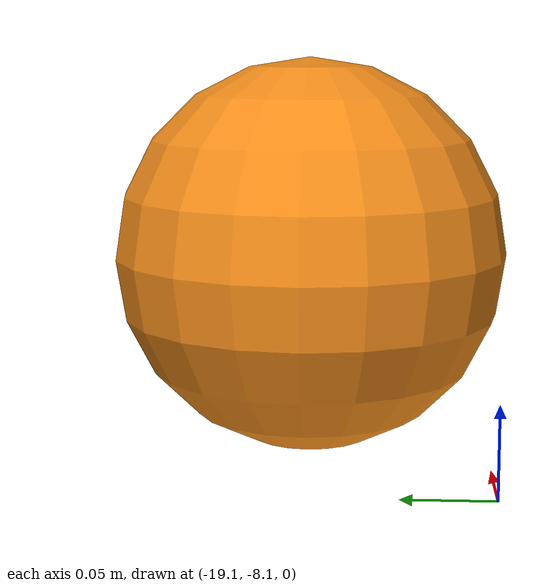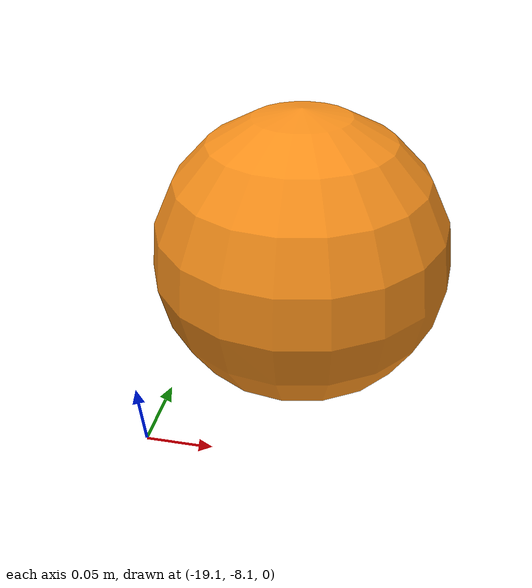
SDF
<?xml version="1.0"?>
<sdf version="1.6">
    <model name="crazy_ball">
        <pose>-19 -8 0.11 0 0 0</pose>
        <static>false</static>
        <link name="ball_link">
            <inertial auto="true" />
            <collision name="collision">
                <density>1240.0</density>
                <geometry>
                    <sphere>
                        <radius>0.11</radius>
                    </sphere>
                </geometry>
            </collision>
            <visual name="visual">
                <geometry>
                    <sphere>
                        <radius>0.11</radius>
                    </sphere>
                </geometry>
                <material>
                    <script>
                        <uri>file://media/materials/scripts/gazebo.material</uri>
                        <name>Gazebo/Orange</name>
                    </script>
                </material>
            </visual>
        </link>
        <plugin
            filename="libsim-crazy-ball-plugin.so"
            name="gz::sim::systems::CrazyBallPlugin">
        </plugin>
    </model>
</sdf>
